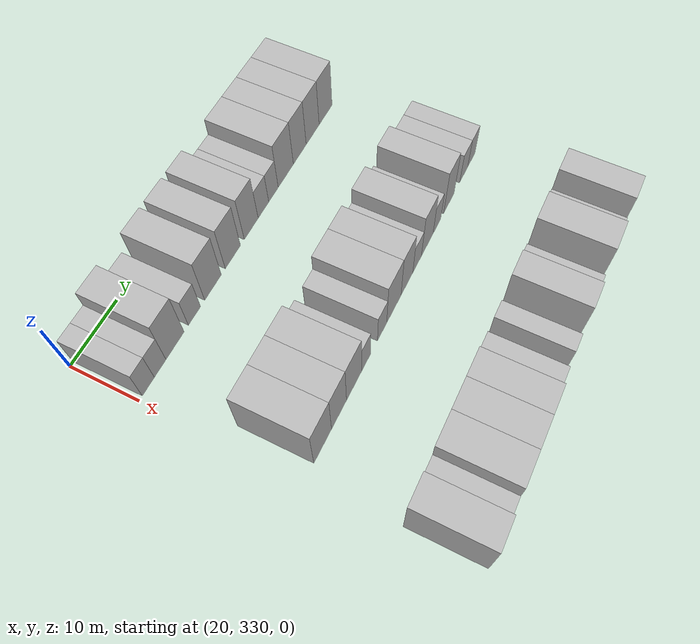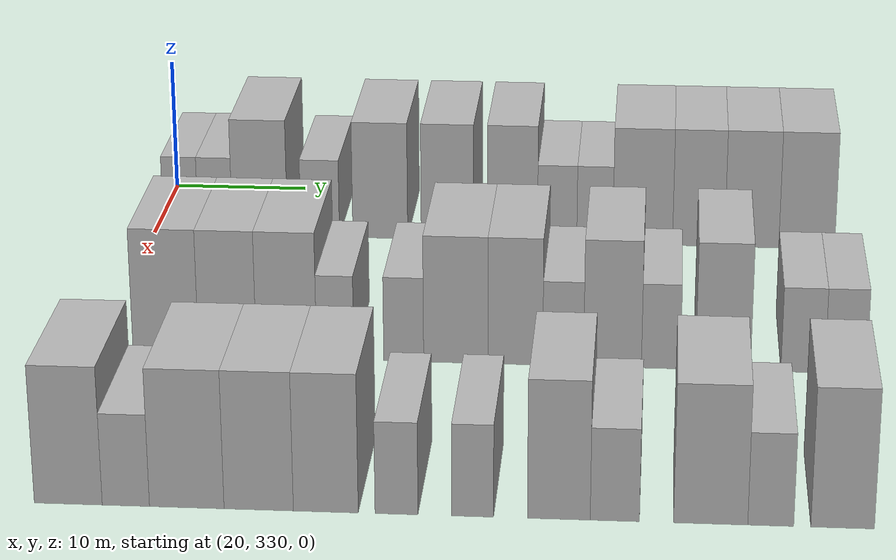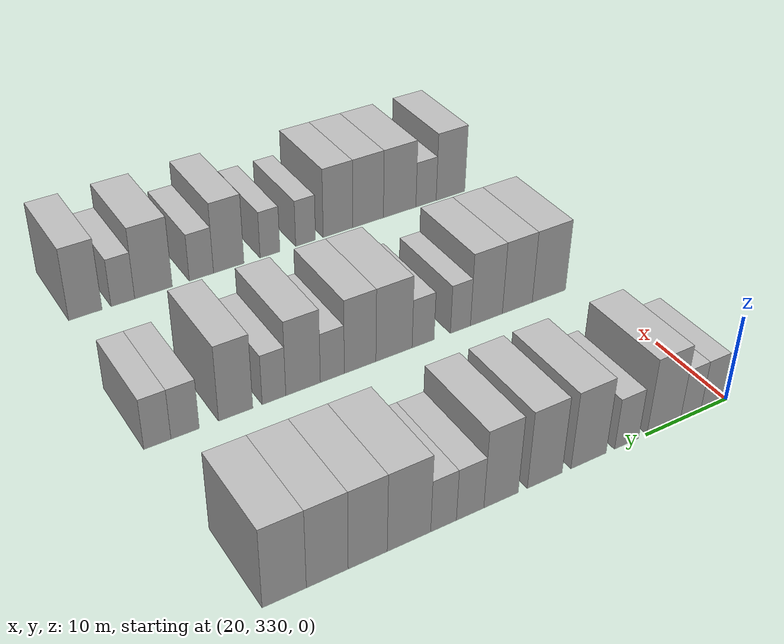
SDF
<sdf version="1.6">
 <world name="default">
  <model name="building_182">
   <static>1</static>
   <pose>25.0000 331.9572 0 0.000000 0.000000 0.000000</pose>
   <link name="link">
    <pose>0 0 3.00 0 0 0</pose>
    <collision name="collision"><geometry><box><size>10.0000 2.5931 6.0000</size></box></geometry></collision>
    <visual name="visual">
     <cast_shadows>0</cast_shadows>
     <geometry><box><size>10.0000 2.5931 6.0000</size></box></geometry>
     <material>
      <script>
       <uri>model://HANNAS_wall/materials/scripts</uri>
       <uri>model://HANNAS_wall/materials/textures</uri>
       <name>vrc/HANNAS_wall</name>
      </script>
     </material>
    </visual>
   </link>
  </model>
  <model name="building_183">
   <static>1</static>
   <pose>25.0000 334.5314 0 0.000000 0.000000 0.000000</pose>
   <link name="link">
    <pose>0 0 3.00 0 0 0</pose>
    <collision name="collision"><geometry><box><size>10.0000 2.5552 6.0000</size></box></geometry></collision>
    <visual name="visual">
     <cast_shadows>0</cast_shadows>
     <geometry><box><size>10.0000 2.5552 6.0000</size></box></geometry>
     <material>
      <script>
       <uri>model://HANNAS_wall/materials/scripts</uri>
       <uri>model://HANNAS_wall/materials/textures</uri>
       <name>vrc/HANNAS_wall</name>
      </script>
     </material>
    </visual>
   </link>
  </model>
  <model name="building_184">
   <static>1</static>
   <pose>25.0000 337.8627 0 0.000000 0.000000 0.000000</pose>
   <link name="link">
    <pose>0 0 4.50 0 0 0</pose>
    <collision name="collision"><geometry><box><size>10.0000 4.1073 9.0000</size></box></geometry></collision>
    <visual name="visual">
     <cast_shadows>0</cast_shadows>
     <geometry><box><size>10.0000 4.1073 9.0000</size></box></geometry>
     <material>
      <script>
       <uri>model://HANNAS_wall/materials/scripts</uri>
       <uri>model://HANNAS_wall/materials/textures</uri>
       <name>vrc/HANNAS_wall</name>
      </script>
     </material>
    </visual>
   </link>
  </model>
  <model name="building_185">
   <static>1</static>
   <pose>25.0000 342.3485 0 0.000000 0.000000 0.000000</pose>
   <link name="link">
    <pose>0 0 3.00 0 0 0</pose>
    <collision name="collision"><geometry><box><size>10.0000 2.8642 6.0000</size></box></geometry></collision>
    <visual name="visual">
     <cast_shadows>0</cast_shadows>
     <geometry><box><size>10.0000 2.8642 6.0000</size></box></geometry>
     <material>
      <script>
       <uri>model://HANNAS_wall/materials/scripts</uri>
       <uri>model://HANNAS_wall/materials/textures</uri>
       <name>vrc/HANNAS_wall</name>
      </script>
     </material>
    </visual>
   </link>
  </model>
  <model name="building_186">
   <static>1</static>
   <pose>25.0000 346.8146 0 0.000000 0.000000 0.000000</pose>
   <link name="link">
    <pose>0 0 4.50 0 0 0</pose>
    <collision name="collision"><geometry><box><size>10.0000 4.0682 9.0000</size></box></geometry></collision>
    <visual name="visual">
     <cast_shadows>0</cast_shadows>
     <geometry><box><size>10.0000 4.0682 9.0000</size></box></geometry>
     <material>
      <script>
       <uri>model://HANNAS_wall/materials/scripts</uri>
       <uri>model://HANNAS_wall/materials/textures</uri>
       <name>vrc/HANNAS_wall</name>
      </script>
     </material>
    </visual>
   </link>
  </model>
  <model name="building_187">
   <static>1</static>
   <pose>25.0000 351.7886 0 0.000000 0.000000 0.000000</pose>
   <link name="link">
    <pose>0 0 4.50 0 0 0</pose>
    <collision name="collision"><geometry><box><size>10.0000 3.8797 9.0000</size></box></geometry></collision>
    <visual name="visual">
     <cast_shadows>0</cast_shadows>
     <geometry><box><size>10.0000 3.8797 9.0000</size></box></geometry>
     <material>
      <script>
       <uri>model://HANNAS_wall/materials/scripts</uri>
       <uri>model://HANNAS_wall/materials/textures</uri>
       <name>vrc/HANNAS_wall</name>
      </script>
     </material>
    </visual>
   </link>
  </model>
  <model name="building_188">
   <static>1</static>
   <pose>25.0000 356.5841 0 0.000000 0.000000 0.000000</pose>
   <link name="link">
    <pose>0 0 4.50 0 0 0</pose>
    <collision name="collision"><geometry><box><size>10.0000 3.7113 9.0000</size></box></geometry></collision>
    <visual name="visual">
     <cast_shadows>0</cast_shadows>
     <geometry><box><size>10.0000 3.7113 9.0000</size></box></geometry>
     <material>
      <script>
       <uri>model://HANNAS_wall/materials/scripts</uri>
       <uri>model://HANNAS_wall/materials/textures</uri>
       <name>vrc/HANNAS_wall</name>
      </script>
     </material>
    </visual>
   </link>
  </model>
  <model name="building_189">
   <static>1</static>
   <pose>25.0000 359.8852 0 0.000000 0.000000 0.000000</pose>
   <link name="link">
    <pose>0 0 3.00 0 0 0</pose>
    <collision name="collision"><geometry><box><size>10.0000 2.8909 6.0000</size></box></geometry></collision>
    <visual name="visual">
     <cast_shadows>0</cast_shadows>
     <geometry><box><size>10.0000 2.8909 6.0000</size></box></geometry>
     <material>
      <script>
       <uri>model://HANNAS_wall/materials/scripts</uri>
       <uri>model://HANNAS_wall/materials/textures</uri>
       <name>vrc/HANNAS_wall</name>
      </script>
     </material>
    </visual>
   </link>
  </model>
  <model name="building_190">
   <static>1</static>
   <pose>25.0000 362.6562 0 0.000000 0.000000 0.000000</pose>
   <link name="link">
    <pose>0 0 3.00 0 0 0</pose>
    <collision name="collision"><geometry><box><size>10.0000 2.6512 6.0000</size></box></geometry></collision>
    <visual name="visual">
     <cast_shadows>0</cast_shadows>
     <geometry><box><size>10.0000 2.6512 6.0000</size></box></geometry>
     <material>
      <script>
       <uri>model://HANNAS_wall/materials/scripts</uri>
       <uri>model://HANNAS_wall/materials/textures</uri>
       <name>vrc/HANNAS_wall</name>
      </script>
     </material>
    </visual>
   </link>
  </model>
  <model name="building_191">
   <static>1</static>
   <pose>25.0000 366.1679 0 0.000000 0.000000 0.000000</pose>
   <link name="link">
    <pose>0 0 4.50 0 0 0</pose>
    <collision name="collision"><geometry><box><size>10.0000 4.3721 9.0000</size></box></geometry></collision>
    <visual name="visual">
     <cast_shadows>0</cast_shadows>
     <geometry><box><size>10.0000 4.3721 9.0000</size></box></geometry>
     <material>
      <script>
       <uri>model://HANNAS_wall/materials/scripts</uri>
       <uri>model://HANNAS_wall/materials/textures</uri>
       <name>vrc/HANNAS_wall</name>
      </script>
     </material>
    </visual>
   </link>
  </model>
  <model name="building_192">
   <static>1</static>
   <pose>25.0000 370.2588 0 0.000000 0.000000 0.000000</pose>
   <link name="link">
    <pose>0 0 4.50 0 0 0</pose>
    <collision name="collision"><geometry><box><size>10.0000 3.8097 9.0000</size></box></geometry></collision>
    <visual name="visual">
     <cast_shadows>0</cast_shadows>
     <geometry><box><size>10.0000 3.8097 9.0000</size></box></geometry>
     <material>
      <script>
       <uri>model://HANNAS_wall/materials/scripts</uri>
       <uri>model://HANNAS_wall/materials/textures</uri>
       <name>vrc/HANNAS_wall</name>
      </script>
     </material>
    </visual>
   </link>
  </model>
  <model name="building_193">
   <static>1</static>
   <pose>25.0000 374.1449 0 0.000000 0.000000 0.000000</pose>
   <link name="link">
    <pose>0 0 4.50 0 0 0</pose>
    <collision name="collision"><geometry><box><size>10.0000 3.9625 9.0000</size></box></geometry></collision>
    <visual name="visual">
     <cast_shadows>0</cast_shadows>
     <geometry><box><size>10.0000 3.9625 9.0000</size></box></geometry>
     <material>
      <script>
       <uri>model://HANNAS_wall/materials/scripts</uri>
       <uri>model://HANNAS_wall/materials/textures</uri>
       <name>vrc/HANNAS_wall</name>
      </script>
     </material>
    </visual>
   </link>
  </model>
  <model name="building_194">
   <static>1</static>
   <pose>25.0000 378.1609 0 0.000000 0.000000 0.000000</pose>
   <link name="link">
    <pose>0 0 4.50 0 0 0</pose>
    <collision name="collision"><geometry><box><size>10.0000 4.0697 9.0000</size></box></geometry></collision>
    <visual name="visual">
     <cast_shadows>0</cast_shadows>
     <geometry><box><size>10.0000 4.0697 9.0000</size></box></geometry>
     <material>
      <script>
       <uri>model://HANNAS_wall/materials/scripts</uri>
       <uri>model://HANNAS_wall/materials/textures</uri>
       <name>vrc/HANNAS_wall</name>
      </script>
     </material>
    </visual>
   </link>
  </model>
  <model name="building_367">
   <static>1</static>
   <pose>47.0000 334.6241 0 0.000000 0.000000 0.000000</pose>
   <link name="link">
    <pose>0 0 4.50 0 0 0</pose>
    <collision name="collision"><geometry><box><size>10.0000 4.4180 9.0000</size></box></geometry></collision>
    <visual name="visual">
     <cast_shadows>0</cast_shadows>
     <geometry><box><size>10.0000 4.4180 9.0000</size></box></geometry>
     <material>
      <script>
       <uri>model://HANNAS_wall/materials/scripts</uri>
       <uri>model://HANNAS_wall/materials/textures</uri>
       <name>vrc/HANNAS_wall</name>
      </script>
     </material>
    </visual>
   </link>
  </model>
  <model name="building_368">
   <static>1</static>
   <pose>47.0000 338.7749 0 0.000000 0.000000 0.000000</pose>
   <link name="link">
    <pose>0 0 4.50 0 0 0</pose>
    <collision name="collision"><geometry><box><size>10.0000 3.8836 9.0000</size></box></geometry></collision>
    <visual name="visual">
     <cast_shadows>0</cast_shadows>
     <geometry><box><size>10.0000 3.8836 9.0000</size></box></geometry>
     <material>
      <script>
       <uri>model://HANNAS_wall/materials/scripts</uri>
       <uri>model://HANNAS_wall/materials/textures</uri>
       <name>vrc/HANNAS_wall</name>
      </script>
     </material>
    </visual>
   </link>
  </model>
  <model name="building_369">
   <static>1</static>
   <pose>47.0000 342.7407 0 0.000000 0.000000 0.000000</pose>
   <link name="link">
    <pose>0 0 4.50 0 0 0</pose>
    <collision name="collision"><geometry><box><size>10.0000 4.0480 9.0000</size></box></geometry></collision>
    <visual name="visual">
     <cast_shadows>0</cast_shadows>
     <geometry><box><size>10.0000 4.0480 9.0000</size></box></geometry>
     <material>
      <script>
       <uri>model://HANNAS_wall/materials/scripts</uri>
       <uri>model://HANNAS_wall/materials/textures</uri>
       <name>vrc/HANNAS_wall</name>
      </script>
     </material>
    </visual>
   </link>
  </model>
  <model name="building_370">
   <static>1</static>
   <pose>47.0000 346.0104 0 0.000000 0.000000 0.000000</pose>
   <link name="link">
    <pose>0 0 3.00 0 0 0</pose>
    <collision name="collision"><geometry><box><size>10.0000 2.4915 6.0000</size></box></geometry></collision>
    <visual name="visual">
     <cast_shadows>0</cast_shadows>
     <geometry><box><size>10.0000 2.4915 6.0000</size></box></geometry>
     <material>
      <script>
       <uri>model://HANNAS_wall/materials/scripts</uri>
       <uri>model://HANNAS_wall/materials/textures</uri>
       <name>vrc/HANNAS_wall</name>
      </script>
     </material>
    </visual>
   </link>
  </model>
  <model name="building_371">
   <static>1</static>
   <pose>47.0000 350.5858 0 0.000000 0.000000 0.000000</pose>
   <link name="link">
    <pose>0 0 3.00 0 0 0</pose>
    <collision name="collision"><geometry><box><size>10.0000 2.6592 6.0000</size></box></geometry></collision>
    <visual name="visual">
     <cast_shadows>0</cast_shadows>
     <geometry><box><size>10.0000 2.6592 6.0000</size></box></geometry>
     <material>
      <script>
       <uri>model://HANNAS_wall/materials/scripts</uri>
       <uri>model://HANNAS_wall/materials/textures</uri>
       <name>vrc/HANNAS_wall</name>
      </script>
     </material>
    </visual>
   </link>
  </model>
  <model name="building_372">
   <static>1</static>
   <pose>47.0000 354.0546 0 0.000000 0.000000 0.000000</pose>
   <link name="link">
    <pose>0 0 4.50 0 0 0</pose>
    <collision name="collision"><geometry><box><size>10.0000 4.2785 9.0000</size></box></geometry></collision>
    <visual name="visual">
     <cast_shadows>0</cast_shadows>
     <geometry><box><size>10.0000 4.2785 9.0000</size></box></geometry>
     <material>
      <script>
       <uri>model://HANNAS_wall/materials/scripts</uri>
       <uri>model://HANNAS_wall/materials/textures</uri>
       <name>vrc/HANNAS_wall</name>
      </script>
     </material>
    </visual>
   </link>
  </model>
  <model name="building_373">
   <static>1</static>
   <pose>47.0000 358.0179 0 0.000000 0.000000 0.000000</pose>
   <link name="link">
    <pose>0 0 4.50 0 0 0</pose>
    <collision name="collision"><geometry><box><size>10.0000 3.6482 9.0000</size></box></geometry></collision>
    <visual name="visual">
     <cast_shadows>0</cast_shadows>
     <geometry><box><size>10.0000 3.6482 9.0000</size></box></geometry>
     <material>
      <script>
       <uri>model://HANNAS_wall/materials/scripts</uri>
       <uri>model://HANNAS_wall/materials/textures</uri>
       <name>vrc/HANNAS_wall</name>
      </script>
     </material>
    </visual>
   </link>
  </model>
  <model name="building_374">
   <static>1</static>
   <pose>47.0000 361.1964 0 0.000000 0.000000 0.000000</pose>
   <link name="link">
    <pose>0 0 3.00 0 0 0</pose>
    <collision name="collision"><geometry><box><size>10.0000 2.7087 6.0000</size></box></geometry></collision>
    <visual name="visual">
     <cast_shadows>0</cast_shadows>
     <geometry><box><size>10.0000 2.7087 6.0000</size></box></geometry>
     <material>
      <script>
       <uri>model://HANNAS_wall/materials/scripts</uri>
       <uri>model://HANNAS_wall/materials/textures</uri>
       <name>vrc/HANNAS_wall</name>
      </script>
     </material>
    </visual>
   </link>
  </model>
  <model name="building_375">
   <static>1</static>
   <pose>47.0000 364.4617 0 0.000000 0.000000 0.000000</pose>
   <link name="link">
    <pose>0 0 4.50 0 0 0</pose>
    <collision name="collision"><geometry><box><size>10.0000 3.8219 9.0000</size></box></geometry></collision>
    <visual name="visual">
     <cast_shadows>0</cast_shadows>
     <geometry><box><size>10.0000 3.8219 9.0000</size></box></geometry>
     <material>
      <script>
       <uri>model://HANNAS_wall/materials/scripts</uri>
       <uri>model://HANNAS_wall/materials/textures</uri>
       <name>vrc/HANNAS_wall</name>
      </script>
     </material>
    </visual>
   </link>
  </model>
  <model name="building_376">
   <static>1</static>
   <pose>47.0000 367.6561 0 0.000000 0.000000 0.000000</pose>
   <link name="link">
    <pose>0 0 3.00 0 0 0</pose>
    <collision name="collision"><geometry><box><size>10.0000 2.5669 6.0000</size></box></geometry></collision>
    <visual name="visual">
     <cast_shadows>0</cast_shadows>
     <geometry><box><size>10.0000 2.5669 6.0000</size></box></geometry>
     <material>
      <script>
       <uri>model://HANNAS_wall/materials/scripts</uri>
       <uri>model://HANNAS_wall/materials/textures</uri>
       <name>vrc/HANNAS_wall</name>
      </script>
     </material>
    </visual>
   </link>
  </model>
  <model name="building_377">
   <static>1</static>
   <pose>47.0000 371.7515 0 0.000000 0.000000 0.000000</pose>
   <link name="link">
    <pose>0 0 4.50 0 0 0</pose>
    <collision name="collision"><geometry><box><size>10.0000 3.6238 9.0000</size></box></geometry></collision>
    <visual name="visual">
     <cast_shadows>0</cast_shadows>
     <geometry><box><size>10.0000 3.6238 9.0000</size></box></geometry>
     <material>
      <script>
       <uri>model://HANNAS_wall/materials/scripts</uri>
       <uri>model://HANNAS_wall/materials/textures</uri>
       <name>vrc/HANNAS_wall</name>
      </script>
     </material>
    </visual>
   </link>
  </model>
  <model name="building_378">
   <static>1</static>
   <pose>47.0000 377.0047 0 0.000000 0.000000 0.000000</pose>
   <link name="link">
    <pose>0 0 3.00 0 0 0</pose>
    <collision name="collision"><geometry><box><size>10.0000 2.8826 6.0000</size></box></geometry></collision>
    <visual name="visual">
     <cast_shadows>0</cast_shadows>
     <geometry><box><size>10.0000 2.8826 6.0000</size></box></geometry>
     <material>
      <script>
       <uri>model://HANNAS_wall/materials/scripts</uri>
       <uri>model://HANNAS_wall/materials/textures</uri>
       <name>vrc/HANNAS_wall</name>
      </script>
     </material>
    </visual>
   </link>
  </model>
  <model name="building_379">
   <static>1</static>
   <pose>47.0000 379.8093 0 0.000000 0.000000 0.000000</pose>
   <link name="link">
    <pose>0 0 3.00 0 0 0</pose>
    <collision name="collision"><geometry><box><size>10.0000 2.7267 6.0000</size></box></geometry></collision>
    <visual name="visual">
     <cast_shadows>0</cast_shadows>
     <geometry><box><size>10.0000 2.7267 6.0000</size></box></geometry>
     <material>
      <script>
       <uri>model://HANNAS_wall/materials/scripts</uri>
       <uri>model://HANNAS_wall/materials/textures</uri>
       <name>vrc/HANNAS_wall</name>
      </script>
     </material>
    </visual>
   </link>
  </model>
  <model name="building_561">
   <static>1</static>
   <pose>69.0000 332.5432 0 0.000000 0.000000 0.000000</pose>
   <link name="link">
    <pose>0 0 4.50 0 0 0</pose>
    <collision name="collision"><geometry><box><size>10.0000 4.0946 9.0000</size></box></geometry></collision>
    <visual name="visual">
     <cast_shadows>0</cast_shadows>
     <geometry><box><size>10.0000 4.0946 9.0000</size></box></geometry>
     <material>
      <script>
       <uri>model://HANNAS_wall/materials/scripts</uri>
       <uri>model://HANNAS_wall/materials/textures</uri>
       <name>vrc/HANNAS_wall</name>
      </script>
     </material>
    </visual>
   </link>
  </model>
  <model name="building_562">
   <static>1</static>
   <pose>69.0000 336.0104 0 0.000000 0.000000 0.000000</pose>
   <link name="link">
    <pose>0 0 3.00 0 0 0</pose>
    <collision name="collision"><geometry><box><size>10.0000 2.8398 6.0000</size></box></geometry></collision>
    <visual name="visual">
     <cast_shadows>0</cast_shadows>
     <geometry><box><size>10.0000 2.8398 6.0000</size></box></geometry>
     <material>
      <script>
       <uri>model://HANNAS_wall/materials/scripts</uri>
       <uri>model://HANNAS_wall/materials/textures</uri>
       <name>vrc/HANNAS_wall</name>
      </script>
     </material>
    </visual>
   </link>
  </model>
  <model name="building_563">
   <static>1</static>
   <pose>69.0000 339.6680 0 0.000000 0.000000 0.000000</pose>
   <link name="link">
    <pose>0 0 4.50 0 0 0</pose>
    <collision name="collision"><geometry><box><size>10.0000 4.4752 9.0000</size></box></geometry></collision>
    <visual name="visual">
     <cast_shadows>0</cast_shadows>
     <geometry><box><size>10.0000 4.4752 9.0000</size></box></geometry>
     <material>
      <script>
       <uri>model://HANNAS_wall/materials/scripts</uri>
       <uri>model://HANNAS_wall/materials/textures</uri>
       <name>vrc/HANNAS_wall</name>
      </script>
     </material>
    </visual>
   </link>
  </model>
  <model name="building_564">
   <static>1</static>
   <pose>69.0000 343.9779 0 0.000000 0.000000 0.000000</pose>
   <link name="link">
    <pose>0 0 4.50 0 0 0</pose>
    <collision name="collision"><geometry><box><size>10.0000 4.1446 9.0000</size></box></geometry></collision>
    <visual name="visual">
     <cast_shadows>0</cast_shadows>
     <geometry><box><size>10.0000 4.1446 9.0000</size></box></geometry>
     <material>
      <script>
       <uri>model://HANNAS_wall/materials/scripts</uri>
       <uri>model://HANNAS_wall/materials/textures</uri>
       <name>vrc/HANNAS_wall</name>
      </script>
     </material>
    </visual>
   </link>
  </model>
  <model name="building_565">
   <static>1</static>
   <pose>69.0000 347.9852 0 0.000000 0.000000 0.000000</pose>
   <link name="link">
    <pose>0 0 4.50 0 0 0</pose>
    <collision name="collision"><geometry><box><size>10.0000 3.8700 9.0000</size></box></geometry></collision>
    <visual name="visual">
     <cast_shadows>0</cast_shadows>
     <geometry><box><size>10.0000 3.8700 9.0000</size></box></geometry>
     <material>
      <script>
       <uri>model://HANNAS_wall/materials/scripts</uri>
       <uri>model://HANNAS_wall/materials/textures</uri>
       <name>vrc/HANNAS_wall</name>
      </script>
     </material>
    </visual>
   </link>
  </model>
  <model name="building_566">
   <static>1</static>
   <pose>69.0000 352.1953 0 0.000000 0.000000 0.000000</pose>
   <link name="link">
    <pose>0 0 3.00 0 0 0</pose>
    <collision name="collision"><geometry><box><size>10.0000 2.5502 6.0000</size></box></geometry></collision>
    <visual name="visual">
     <cast_shadows>0</cast_shadows>
     <geometry><box><size>10.0000 2.5502 6.0000</size></box></geometry>
     <material>
      <script>
       <uri>model://HANNAS_wall/materials/scripts</uri>
       <uri>model://HANNAS_wall/materials/textures</uri>
       <name>vrc/HANNAS_wall</name>
      </script>
     </material>
    </visual>
   </link>
  </model>
  <model name="building_567">
   <static>1</static>
   <pose>69.0000 356.7116 0 0.000000 0.000000 0.000000</pose>
   <link name="link">
    <pose>0 0 3.00 0 0 0</pose>
    <collision name="collision"><geometry><box><size>10.0000 2.4826 6.0000</size></box></geometry></collision>
    <visual name="visual">
     <cast_shadows>0</cast_shadows>
     <geometry><box><size>10.0000 2.4826 6.0000</size></box></geometry>
     <material>
      <script>
       <uri>model://HANNAS_wall/materials/scripts</uri>
       <uri>model://HANNAS_wall/materials/textures</uri>
       <name>vrc/HANNAS_wall</name>
      </script>
     </material>
    </visual>
   </link>
  </model>
  <model name="building_568">
   <static>1</static>
   <pose>69.0000 361.8060 0 0.000000 0.000000 0.000000</pose>
   <link name="link">
    <pose>0 0 4.50 0 0 0</pose>
    <collision name="collision"><geometry><box><size>10.0000 3.7060 9.0000</size></box></geometry></collision>
    <visual name="visual">
     <cast_shadows>0</cast_shadows>
     <geometry><box><size>10.0000 3.7060 9.0000</size></box></geometry>
     <material>
      <script>
       <uri>model://HANNAS_wall/materials/scripts</uri>
       <uri>model://HANNAS_wall/materials/textures</uri>
       <name>vrc/HANNAS_wall</name>
      </script>
     </material>
    </visual>
   </link>
  </model>
  <model name="building_569">
   <static>1</static>
   <pose>69.0000 365.1073 0 0.000000 0.000000 0.000000</pose>
   <link name="link">
    <pose>0 0 3.00 0 0 0</pose>
    <collision name="collision"><geometry><box><size>10.0000 2.8967 6.0000</size></box></geometry></collision>
    <visual name="visual">
     <cast_shadows>0</cast_shadows>
     <geometry><box><size>10.0000 2.8967 6.0000</size></box></geometry>
     <material>
      <script>
       <uri>model://HANNAS_wall/materials/scripts</uri>
       <uri>model://HANNAS_wall/materials/textures</uri>
       <name>vrc/HANNAS_wall</name>
      </script>
     </material>
    </visual>
   </link>
  </model>
  <model name="building_570">
   <static>1</static>
   <pose>69.0000 370.7329 0 0.000000 0.000000 0.000000</pose>
   <link name="link">
    <pose>0 0 4.50 0 0 0</pose>
    <collision name="collision"><geometry><box><size>10.0000 4.3543 9.0000</size></box></geometry></collision>
    <visual name="visual">
     <cast_shadows>0</cast_shadows>
     <geometry><box><size>10.0000 4.3543 9.0000</size></box></geometry>
     <material>
      <script>
       <uri>model://HANNAS_wall/materials/scripts</uri>
       <uri>model://HANNAS_wall/materials/textures</uri>
       <name>vrc/HANNAS_wall</name>
      </script>
     </material>
    </visual>
   </link>
  </model>
  <model name="building_571">
   <static>1</static>
   <pose>69.0000 374.2527 0 0.000000 0.000000 0.000000</pose>
   <link name="link">
    <pose>0 0 3.00 0 0 0</pose>
    <collision name="collision"><geometry><box><size>10.0000 2.6854 6.0000</size></box></geometry></collision>
    <visual name="visual">
     <cast_shadows>0</cast_shadows>
     <geometry><box><size>10.0000 2.6854 6.0000</size></box></geometry>
     <material>
      <script>
       <uri>model://HANNAS_wall/materials/scripts</uri>
       <uri>model://HANNAS_wall/materials/textures</uri>
       <name>vrc/HANNAS_wall</name>
      </script>
     </material>
    </visual>
   </link>
  </model>
  <model name="building_572">
   <static>1</static>
   <pose>69.0000 378.4477 0 0.000000 0.000000 0.000000</pose>
   <link name="link">
    <pose>0 0 4.50 0 0 0</pose>
    <collision name="collision"><geometry><box><size>10.0000 3.7045 9.0000</size></box></geometry></collision>
    <visual name="visual">
     <cast_shadows>0</cast_shadows>
     <geometry><box><size>10.0000 3.7045 9.0000</size></box></geometry>
     <material>
      <script>
       <uri>model://HANNAS_wall/materials/scripts</uri>
       <uri>model://HANNAS_wall/materials/textures</uri>
       <name>vrc/HANNAS_wall</name>
      </script>
     </material>
    </visual>
   </link>
  </model>
 </world>
</sdf>
